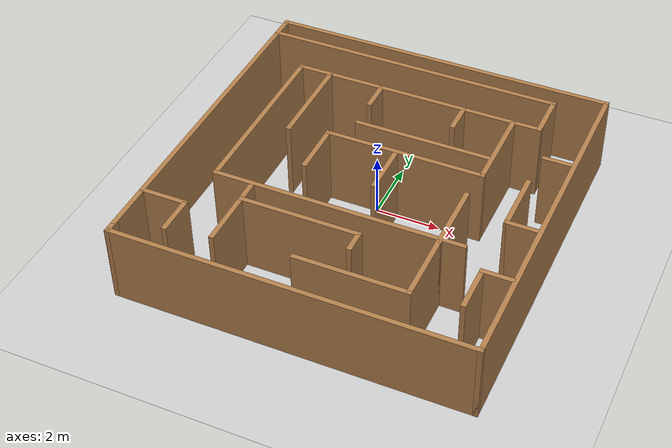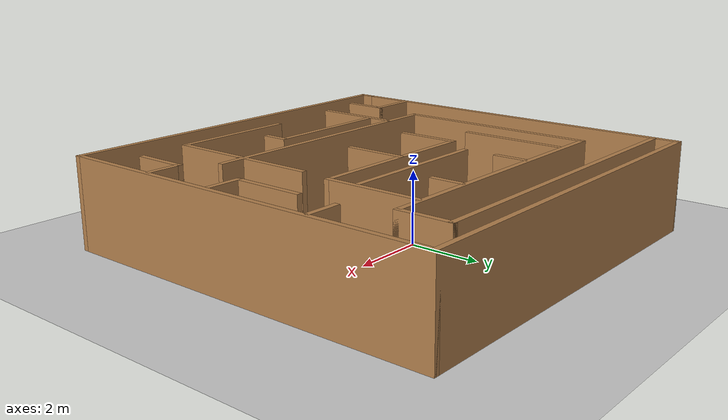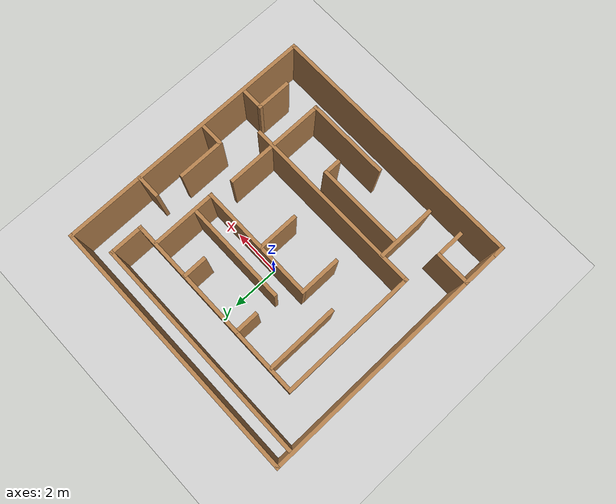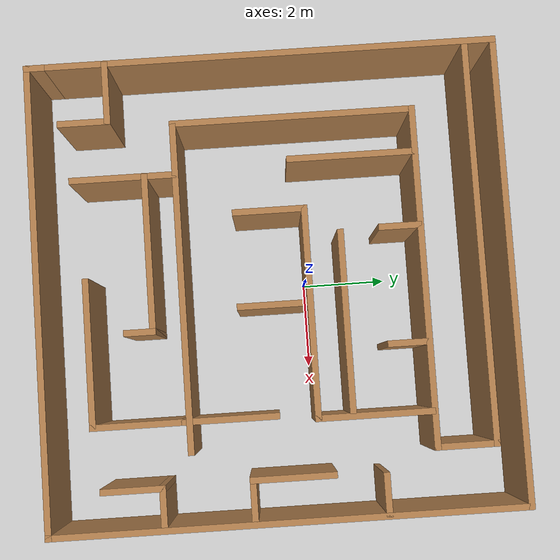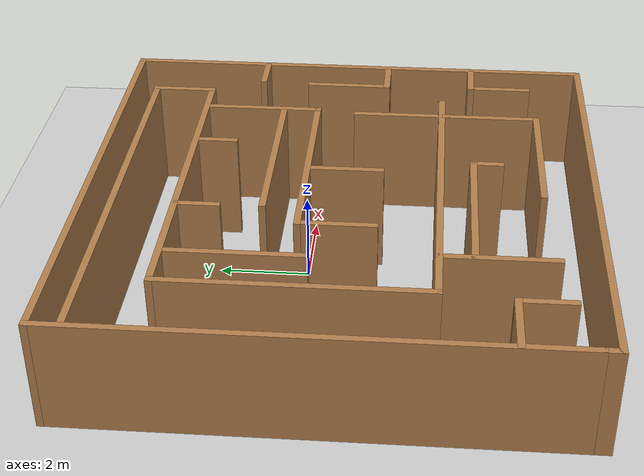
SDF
<sdf version="1.6">
 <world name="default">
  <light name="sun" type="directional">
   <pose>0 0 10 0 -0 0</pose>
   <diffuse>0.8 0.8 0.8 1</diffuse>
   <specular>0.2 0.2 0.2 1</specular>
   <attenuation>
    <range>1000</range>
    <constant>0.9</constant>
    <linear>0.01</linear>
    <quadratic>0.001</quadratic>
   </attenuation>
   <direction>-0.5 0.1 -0.9</direction>
  </light>
  <model name="ground_plane">
   <static>1</static>
   <link name="link">
    <collision name="collision">
     <geometry><plane><normal>0 0 1</normal><size>100 100</size></plane></geometry>
     <surface><friction><ode><mu>100</mu><mu2>50</mu2></ode></friction></surface>
    </collision>
    <visual name="visual">
     <cast_shadows>0</cast_shadows>
     <geometry><plane><normal>0 0 1</normal><size>100 100</size></plane></geometry>
     <material>
      <script><uri>file://media/materials/scripts/gazebo.material</uri><name>Gazebo/Grey</name></script>
     </material>
    </visual>
   </link>
  </model>
  <gravity>0 0 -9.8</gravity>
  <magnetic_field>6e-06 2.3e-05 -4.2e-05</magnetic_field>
  <atmosphere type="adiabatic"/>
  <physics name="default_physics" default="0" type="ode">
   <max_step_size>0.001</max_step_size>
   <real_time_factor>1</real_time_factor>
   <real_time_update_rate>1000</real_time_update_rate>
  </physics>
  <scene><ambient>0.4 0.4 0.4 1</ambient><background>0.7 0.7 0.7 1</background><shadows>1</shadows></scene>
  <spherical_coordinates>
   <surface_model>EARTH_WGS84</surface_model>
   <latitude_deg>0</latitude_deg>
   <longitude_deg>0</longitude_deg>
   <elevation>0</elevation>
   <heading_deg>0</heading_deg>
  </spherical_coordinates>
  <model name="Indoor1">
   <pose>0.106334 -0.741441 0 0 -0 0</pose>
   <link name="Wall_0">
    <collision name="Wall_0_Collision">
     <geometry><box><size>10.75 0.15 2.5</size></box></geometry>
     <pose>0 0 1.25 0 -0 0</pose>
    </collision>
    <visual name="Wall_0_Visual">
     <pose>0 0 1.25 0 -0 0</pose>
     <geometry><box><size>10.75 0.15 2.5</size></box></geometry>
     <material>
      <script><uri>file://media/materials/scripts/gazebo.material</uri><name>Gazebo/Wood</name></script>
      <ambient>1 1 1 1</ambient>
     </material>
     <meta><layer>0</layer></meta>
    </visual>
    <pose>-5.425 0.174999 0 0 -0 -1.5708</pose>
   </link>
   <link name="Wall_1">
    <collision name="Wall_1_Collision">
     <geometry><box><size>0.5 0.15 2.5</size></box></geometry>
     <pose>0 0 1.25 0 -0 0</pose>
    </collision>
    <visual name="Wall_1_Visual">
     <pose>0 0 1.25 0 -0 0</pose>
     <geometry><box><size>0.5 0.15 2.5</size></box></geometry>
     <material>
      <script><uri>file://media/materials/scripts/gazebo.material</uri><name>Gazebo/Wood</name></script>
      <ambient>1 1 1 1</ambient>
     </material>
     <meta><layer>0</layer></meta>
    </visual>
    <pose>-5.425 -5.3 0 0 -0 -1.5708</pose>
   </link>
   <link name="Wall_10">
    <collision name="Wall_10_Collision">
     <geometry><box><size>5.75 0.15 2.5</size></box></geometry>
     <pose>0 0 1.25 0 -0 0</pose>
    </collision>
    <visual name="Wall_10_Visual">
     <pose>0 0 1.25 0 -0 0</pose>
     <geometry><box><size>5.75 0.15 2.5</size></box></geometry>
     <material>
      <script><uri>file://media/materials/scripts/gazebo.material</uri><name>Gazebo/Wood</name></script>
      <ambient>1 1 1 1</ambient>
     </material>
     <meta><layer>0</layer></meta>
    </visual>
    <pose>-3.89243 0.658432 0 0 -0 -1.5708</pose>
   </link>
   <link name="Wall_11">
    <collision name="Wall_11_Collision">
     <geometry><box><size>7.75 0.15 2.5</size></box></geometry>
     <pose>0 0 1.25 0 -0 0</pose>
    </collision>
    <visual name="Wall_11_Visual">
     <pose>0 0 1.25 0 -0 0</pose>
     <geometry><box><size>7.75 0.15 2.5</size></box></geometry>
     <material>
      <script><uri>file://media/materials/scripts/gazebo.material</uri><name>Gazebo/Wood</name></script>
      <ambient>1 1 1 1</ambient>
     </material>
     <meta><layer>0</layer></meta>
    </visual>
    <pose>-0.092431 -2.14157 0 0 -0 0</pose>
   </link>
   <link name="Wall_13">
    <collision name="Wall_13_Collision">
     <geometry><box><size>2.5 0.15 2.5</size></box></geometry>
     <pose>0 0 1.25 0 -0 0</pose>
    </collision>
    <visual name="Wall_13_Visual">
     <pose>0 0 1.25 0 -0 0</pose>
     <geometry><box><size>2.5 0.15 2.5</size></box></geometry>
     <material>
      <script><uri>file://media/materials/scripts/gazebo.material</uri><name>Gazebo/Wood</name></script>
      <ambient>1 1 1 1</ambient>
     </material>
     <meta><layer>0</layer></meta>
    </visual>
    <pose>-2.6986 -3.36582 0 0 -0 -1.5708</pose>
   </link>
   <link name="Wall_15">
    <collision name="Wall_15_Collision">
     <geometry><box><size>2.25 0.15 2.5</size></box></geometry>
     <pose>0 0 1.25 0 -0 0</pose>
    </collision>
    <visual name="Wall_15_Visual">
     <pose>0 0 1.25 0 -0 0</pose>
     <geometry><box><size>2.25 0.15 2.5</size></box></geometry>
     <material>
      <script><uri>file://media/materials/scripts/gazebo.material</uri><name>Gazebo/Wood</name></script>
      <ambient>1 1 1 1</ambient>
     </material>
     <meta><layer>0</layer></meta>
    </visual>
    <pose>3.01844 -3.29964 0 0 -0 -1.5708</pose>
   </link>
   <link name="Wall_16">
    <collision name="Wall_16_Collision">
     <geometry><box><size>3.5 0.15 2.5</size></box></geometry>
     <pose>0 0 1.25 0 -0 0</pose>
    </collision>
    <visual name="Wall_16_Visual">
     <pose>0 0 1.25 0 -0 0</pose>
     <geometry><box><size>3.5 0.15 2.5</size></box></geometry>
     <material>
      <script><uri>file://media/materials/scripts/gazebo.material</uri><name>Gazebo/Wood</name></script>
      <ambient>1 1 1 1</ambient>
     </material>
     <meta><layer>0</layer></meta>
    </visual>
    <pose>1.34343 -4.34964 0 0 -0 3.14159</pose>
   </link>
   <link name="Wall_18">
    <collision name="Wall_18_Collision">
     <geometry><box><size>3.75 0.15 2.5</size></box></geometry>
     <pose>0 0 1.25 0 -0 0</pose>
    </collision>
    <visual name="Wall_18_Visual">
     <pose>0 0 1.25 0 -0 0</pose>
     <geometry><box><size>3.75 0.15 2.5</size></box></geometry>
     <material>
      <script><uri>file://media/materials/scripts/gazebo.material</uri><name>Gazebo/Wood</name></script>
      <ambient>1 1 1 1</ambient>
     </material>
     <meta><layer>0</layer></meta>
    </visual>
    <pose>-0.886838 -2.86134 0 0 -0 0</pose>
   </link>
   <link name="Wall_19">
    <collision name="Wall_19_Collision">
     <geometry><box><size>0.75 0.15 2.5</size></box></geometry>
     <pose>0 0 1.25 0 -0 0</pose>
    </collision>
    <visual name="Wall_19_Visual">
     <pose>0 0 1.25 0 -0 0</pose>
     <geometry><box><size>0.75 0.15 2.5</size></box></geometry>
     <material>
      <script><uri>file://media/materials/scripts/gazebo.material</uri><name>Gazebo/Wood</name></script>
      <ambient>1 1 1 1</ambient>
     </material>
     <meta><layer>0</layer></meta>
    </visual>
    <pose>0.913162 -3.16134 0 0 -0 -1.5708</pose>
   </link>
   <link name="Wall_2">
    <collision name="Wall_2_Collision">
     <geometry><box><size>11 0.15 2.5</size></box></geometry>
     <pose>0 0 1.25 0 -0 0</pose>
    </collision>
    <visual name="Wall_2_Visual">
     <pose>0 0 1.25 0 -0 0</pose>
     <geometry><box><size>11 0.15 2.5</size></box></geometry>
     <material>
      <script><uri>file://media/materials/scripts/gazebo.material</uri><name>Gazebo/Wood</name></script>
      <ambient>1 1 1 1</ambient>
     </material>
     <meta><layer>0</layer></meta>
    </visual>
    <pose>0 -5.475 0 0 -0 0</pose>
   </link>
   <link name="Wall_21">
    <collision name="Wall_21_Collision">
     <geometry><box><size>2.75 0.15 2.5</size></box></geometry>
     <pose>0 0 1.25 0 -0 0</pose>
    </collision>
    <visual name="Wall_21_Visual">
     <pose>0 0 1.25 0 -0 0</pose>
     <geometry><box><size>2.75 0.15 2.5</size></box></geometry>
     <material>
      <script><uri>file://media/materials/scripts/gazebo.material</uri><name>Gazebo/Wood</name></script>
      <ambient>1 1 1 1</ambient>
     </material>
     <meta><layer>0</layer></meta>
    </visual>
    <pose>3.13607 2.09682 0 0 -0 -1.5708</pose>
   </link>
   <link name="Wall_22">
    <collision name="Wall_22_Collision">
     <geometry><box><size>5 0.15 2.5</size></box></geometry>
     <pose>0 0 1.25 0 -0 0</pose>
    </collision>
    <visual name="Wall_22_Visual">
     <pose>0 0 1.25 0 -0 0</pose>
     <geometry><box><size>5 0.15 2.5</size></box></geometry>
     <material>
      <script><uri>file://media/materials/scripts/gazebo.material</uri><name>Gazebo/Wood</name></script>
      <ambient>1 1 1 1</ambient>
     </material>
     <meta><layer>0</layer></meta>
    </visual>
    <pose>0.71107 0.796818 0 0 -0 3.14159</pose>
   </link>
   <link name="Wall_23">
    <collision name="Wall_23_Collision">
     <geometry><box><size>1.75 0.15 2.5</size></box></geometry>
     <pose>0 0 1.25 0 -0 0</pose>
    </collision>
    <visual name="Wall_23_Visual">
     <pose>0 0 1.25 0 -0 0</pose>
     <geometry><box><size>1.75 0.15 2.5</size></box></geometry>
     <material>
      <script><uri>file://media/materials/scripts/gazebo.material</uri><name>Gazebo/Wood</name></script>
      <ambient>1 1 1 1</ambient>
     </material>
     <meta><layer>0</layer></meta>
    </visual>
    <pose>-1.71393 -0.003182 0 0 -0 -1.5708</pose>
   </link>
   <link name="Wall_25">
    <collision name="Wall_25_Collision">
     <geometry><box><size>1 0.15 2.5</size></box></geometry>
     <pose>0 0 1.25 0 -0 0</pose>
    </collision>
    <visual name="Wall_25_Visual">
     <pose>0 0 1.25 0 -0 0</pose>
     <geometry><box><size>1 0.15 2.5</size></box></geometry>
     <material>
      <script><uri>file://media/materials/scripts/gazebo.material</uri><name>Gazebo/Wood</name></script>
      <ambient>1 1 1 1</ambient>
     </material>
     <meta><layer>0</layer></meta>
    </visual>
    <pose>-1.15759 2.98358 0 0 -0 -1.5708</pose>
   </link>
   <link name="Wall_27">
    <collision name="Wall_27_Collision">
     <geometry><box><size>1 0.15 2.5</size></box></geometry>
     <pose>0 0 1.25 0 -0 0</pose>
    </collision>
    <visual name="Wall_27_Visual">
     <pose>0 0 1.25 0 -0 0</pose>
     <geometry><box><size>1 0.15 2.5</size></box></geometry>
     <material>
      <script><uri>file://media/materials/scripts/gazebo.material</uri><name>Gazebo/Wood</name></script>
      <ambient>1 1 1 1</ambient>
     </material>
     <meta><layer>0</layer></meta>
    </visual>
    <pose>1.548 2.99534 0 0 -0 -1.5708</pose>
   </link>
   <link name="Wall_29">
    <collision name="Wall_29_Collision">
     <geometry><box><size>4.25 0.15 2.5</size></box></geometry>
     <pose>0 0 1.25 0 -0 0</pose>
    </collision>
    <visual name="Wall_29_Visual">
     <pose>0 0 1.25 0 -0 0</pose>
     <geometry><box><size>4.25 0.15 2.5</size></box></geometry>
     <material>
      <script><uri>file://media/materials/scripts/gazebo.material</uri><name>Gazebo/Wood</name></script>
      <ambient>1 1 1 1</ambient>
     </material>
     <meta><layer>0</layer></meta>
    </visual>
    <pose>0.951228 1.59701 0 0 -0 0</pose>
   </link>
   <link name="Wall_31">
    <collision name="Wall_31_Collision">
     <geometry><box><size>3 0.15 2.5</size></box></geometry>
     <pose>0 0 1.25 0 -0 0</pose>
    </collision>
    <visual name="Wall_31_Visual">
     <pose>0 0 1.25 0 -0 0</pose>
     <geometry><box><size>3 0.15 2.5</size></box></geometry>
     <material>
      <script><uri>file://media/materials/scripts/gazebo.material</uri><name>Gazebo/Wood</name></script>
      <ambient>1 1 1 1</ambient>
     </material>
     <meta><layer>0</layer></meta>
    </visual>
    <pose>-2.88682 1.96006 0 0 -0 -1.5708</pose>
   </link>
   <link name="Wall_35">
    <collision name="Wall_35_Collision">
     <geometry><box><size>2.25 0.15 2.5</size></box></geometry>
     <pose>0 0 1.25 0 -0 0</pose>
    </collision>
    <visual name="Wall_35_Visual">
     <pose>0 0 1.25 0 -0 0</pose>
     <geometry><box><size>2.25 0.15 2.5</size></box></geometry>
     <material>
      <script><uri>file://media/materials/scripts/gazebo.material</uri><name>Gazebo/Wood</name></script>
      <ambient>1 1 1 1</ambient>
     </material>
     <meta><layer>0</layer></meta>
    </visual>
    <pose>3.01844 -1.19964 0 0 -0 1.5708</pose>
   </link>
   <link name="Wall_37">
    <collision name="Wall_37_Collision">
     <geometry><box><size>1.75 0.15 2.5</size></box></geometry>
     <pose>0 0 1.25 0 -0 0</pose>
    </collision>
    <visual name="Wall_37_Visual">
     <pose>0 0 1.25 0 -0 0</pose>
     <geometry><box><size>1.75 0.15 2.5</size></box></geometry>
     <material>
      <script><uri>file://media/materials/scripts/gazebo.material</uri><name>Gazebo/Wood</name></script>
      <ambient>1 1 1 1</ambient>
     </material>
     <meta><layer>0</layer></meta>
    </visual>
    <pose>0.47753 -0.026431 0 0 -0 -1.5708</pose>
   </link>
   <link name="Wall_39">
    <collision name="Wall_39_Collision">
     <geometry><box><size>1 0.15 2.5</size></box></geometry>
     <pose>0 0 1.25 0 -0 0</pose>
    </collision>
    <visual name="Wall_39_Visual">
     <pose>0 0 1.25 0 -0 0</pose>
     <geometry><box><size>1 0.15 2.5</size></box></geometry>
     <material>
      <script><uri>file://media/materials/scripts/gazebo.material</uri><name>Gazebo/Wood</name></script>
      <ambient>1 1 1 1</ambient>
     </material>
     <meta><layer>0</layer></meta>
    </visual>
    <pose>4.94613 2.25576 0 0 -0 3.14159</pose>
   </link>
   <link name="Wall_4">
    <collision name="Wall_4_Collision">
     <geometry><box><size>11 0.15 2.5</size></box></geometry>
     <pose>0 0 1.25 0 -0 0</pose>
    </collision>
    <visual name="Wall_4_Visual">
     <pose>0 0 1.25 0 -0 0</pose>
     <geometry><box><size>11 0.15 2.5</size></box></geometry>
     <material>
      <script><uri>file://media/materials/scripts/gazebo.material</uri><name>Gazebo/Wood</name></script>
      <ambient>1 1 1 1</ambient>
     </material>
     <meta><layer>0</layer></meta>
    </visual>
    <pose>0 5.475 0 0 -0 0</pose>
   </link>
   <link name="Wall_41">
    <collision name="Wall_41_Collision">
     <geometry><box><size>2 0.15 2.5</size></box></geometry>
     <pose>0 0 1.25 0 -0 0</pose>
    </collision>
    <visual name="Wall_41_Visual">
     <pose>0 0 1.25 0 -0 0</pose>
     <geometry><box><size>2 0.15 2.5</size></box></geometry>
     <material>
      <script><uri>file://media/materials/scripts/gazebo.material</uri><name>Gazebo/Wood</name></script>
      <ambient>1 1 1 1</ambient>
     </material>
     <meta><layer>0</layer></meta>
    </visual>
    <pose>4.43005 0.142655 0 0 -0 -1.5708</pose>
   </link>
   <link name="Wall_42">
    <collision name="Wall_42_Collision">
     <geometry><box><size>1 0.15 2.5</size></box></geometry>
     <pose>0 0 1.25 0 -0 0</pose>
    </collision>
    <visual name="Wall_42_Visual">
     <pose>0 0 1.25 0 -0 0</pose>
     <geometry><box><size>1 0.15 2.5</size></box></geometry>
     <material>
      <script><uri>file://media/materials/scripts/gazebo.material</uri><name>Gazebo/Wood</name></script>
      <ambient>1 1 1 1</ambient>
     </material>
     <meta><layer>0</layer></meta>
    </visual>
    <pose>4.85505 -0.782345 0 0 -0 0</pose>
   </link>
   <link name="Wall_44">
    <collision name="Wall_44_Collision">
     <geometry><box><size>1.5 0.15 2.5</size></box></geometry>
     <pose>0 0 1.25 0 -0 0</pose>
    </collision>
    <visual name="Wall_44_Visual">
     <pose>0 0 1.25 0 -0 0</pose>
     <geometry><box><size>1.5 0.15 2.5</size></box></geometry>
     <material>
      <script><uri>file://media/materials/scripts/gazebo.material</uri><name>Gazebo/Wood</name></script>
      <ambient>1 1 1 1</ambient>
     </material>
     <meta><layer>0</layer></meta>
    </visual>
    <pose>-4.72919 -3.64949 0 0 -0 0</pose>
   </link>
   <link name="Wall_45">
    <collision name="Wall_45_Collision">
     <geometry><box><size>1.25 0.15 2.5</size></box></geometry>
     <pose>0 0 1.25 0 -0 0</pose>
    </collision>
    <visual name="Wall_45_Visual">
     <pose>0 0 1.25 0 -0 0</pose>
     <geometry><box><size>1.25 0.15 2.5</size></box></geometry>
     <material>
      <script><uri>file://media/materials/scripts/gazebo.material</uri><name>Gazebo/Wood</name></script>
      <ambient>1 1 1 1</ambient>
     </material>
     <meta><layer>0</layer></meta>
    </visual>
    <pose>-4.05419 -4.19949 0 0 -0 -1.5708</pose>
   </link>
   <link name="Wall_47">
    <collision name="Wall_47_Collision">
     <geometry><box><size>1 0.15 2.5</size></box></geometry>
     <pose>0 0 1.25 0 -0 0</pose>
    </collision>
    <visual name="Wall_47_Visual">
     <pose>0 0 1.25 0 -0 0</pose>
     <geometry><box><size>1 0.15 2.5</size></box></geometry>
     <material>
      <script><uri>file://media/materials/scripts/gazebo.material</uri><name>Gazebo/Wood</name></script>
      <ambient>1 1 1 1</ambient>
     </material>
     <meta><layer>0</layer></meta>
    </visual>
    <pose>4.9021 -2.83781 0 0 -0 0</pose>
   </link>
   <link name="Wall_49">
    <collision name="Wall_49_Collision">
     <geometry><box><size>1.5 0.15 2.5</size></box></geometry>
     <pose>0 0 1.25 0 -0 0</pose>
    </collision>
    <visual name="Wall_49_Visual">
     <pose>0 0 1.25 0 -0 0</pose>
     <geometry><box><size>1.5 0.15 2.5</size></box></geometry>
     <material>
      <script><uri>file://media/materials/scripts/gazebo.material</uri><name>Gazebo/Wood</name></script>
      <ambient>1 1 1 1</ambient>
     </material>
     <meta><layer>0</layer></meta>
    </visual>
    <pose>4.4771 -3.51281 0 0 -0 -1.5708</pose>
   </link>
   <link name="Wall_5">
    <collision name="Wall_5_Collision">
     <geometry><box><size>11.1 0.15 2.5</size></box></geometry>
     <pose>0 0 1.25 0 -0 0</pose>
    </collision>
    <visual name="Wall_5_Visual">
     <pose>0 0 1.25 0 -0 0</pose>
     <geometry><box><size>11.1 0.15 2.5</size></box></geometry>
     <material>
      <script><uri>file://media/materials/scripts/gazebo.material</uri><name>Gazebo/Wood</name></script>
      <ambient>1 1 1 1</ambient>
     </material>
     <meta><layer>0</layer></meta>
    </visual>
    <pose>5.425 -0 0 0 -0 -1.5708</pose>
   </link>
   <link name="Wall_7">
    <collision name="Wall_7_Collision">
     <geometry><box><size>9.5 0.15 2.5</size></box></geometry>
     <pose>0 0 1.25 0 -0 0</pose>
    </collision>
    <visual name="Wall_7_Visual">
     <pose>0 0 1.25 0 -0 0</pose>
     <geometry><box><size>9.5 0.15 2.5</size></box></geometry>
     <material>
      <script><uri>file://media/materials/scripts/gazebo.material</uri><name>Gazebo/Wood</name></script>
      <ambient>1 1 1 1</ambient>
     </material>
     <meta><layer>0</layer></meta>
    </visual>
    <pose>-0.717431 4.80843 0 0 -0 0</pose>
   </link>
   <link name="Wall_8">
    <collision name="Wall_8_Collision">
     <geometry><box><size>1.5 0.15 2.5</size></box></geometry>
     <pose>0 0 1.25 0 -0 0</pose>
    </collision>
    <visual name="Wall_8_Visual">
     <pose>0 0 1.25 0 -0 0</pose>
     <geometry><box><size>1.5 0.15 2.5</size></box></geometry>
     <material>
      <script><uri>file://media/materials/scripts/gazebo.material</uri><name>Gazebo/Wood</name></script>
      <ambient>1 1 1 1</ambient>
     </material>
     <meta><layer>0</layer></meta>
    </visual>
    <pose>3.95757 4.13343 0 0 -0 -1.5708</pose>
   </link>
   <link name="Wall_9">
    <collision name="Wall_9_Collision">
     <geometry><box><size>8 0.15 2.5</size></box></geometry>
     <pose>0 0 1.25 0 -0 0</pose>
    </collision>
    <visual name="Wall_9_Visual">
     <pose>0 0 1.25 0 -0 0</pose>
     <geometry><box><size>8 0.15 2.5</size></box></geometry>
     <material>
      <script><uri>file://media/materials/scripts/gazebo.material</uri><name>Gazebo/Wood</name></script>
      <ambient>1 1 1 1</ambient>
     </material>
     <meta><layer>0</layer></meta>
    </visual>
    <pose>0.032569 3.45843 0 0 -0 3.14159</pose>
   </link>
   <static>1</static>
  </model>
 </world>
</sdf>
